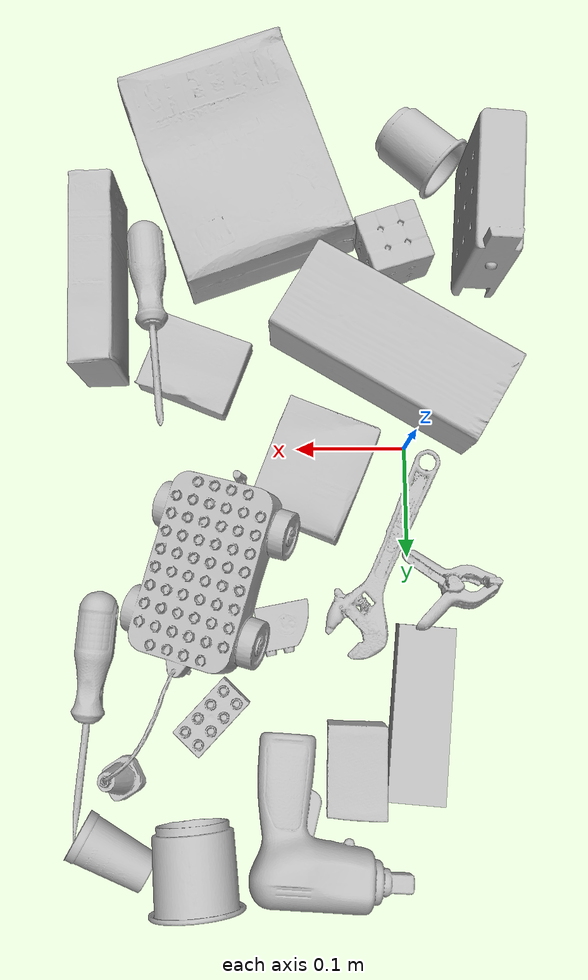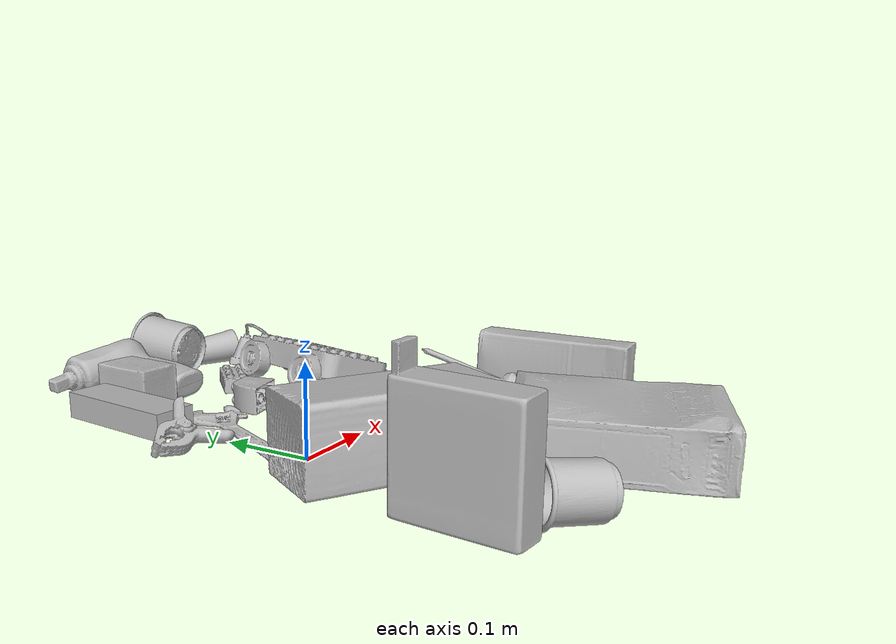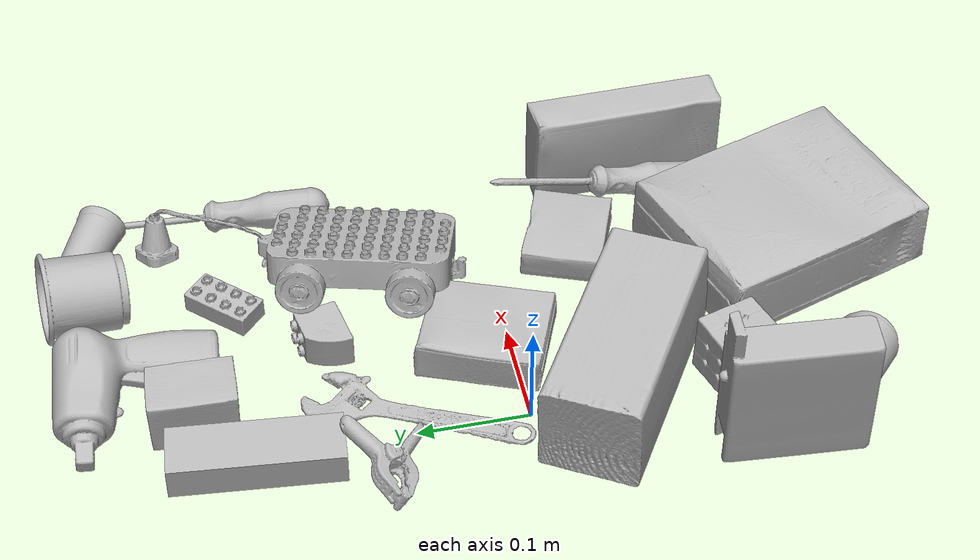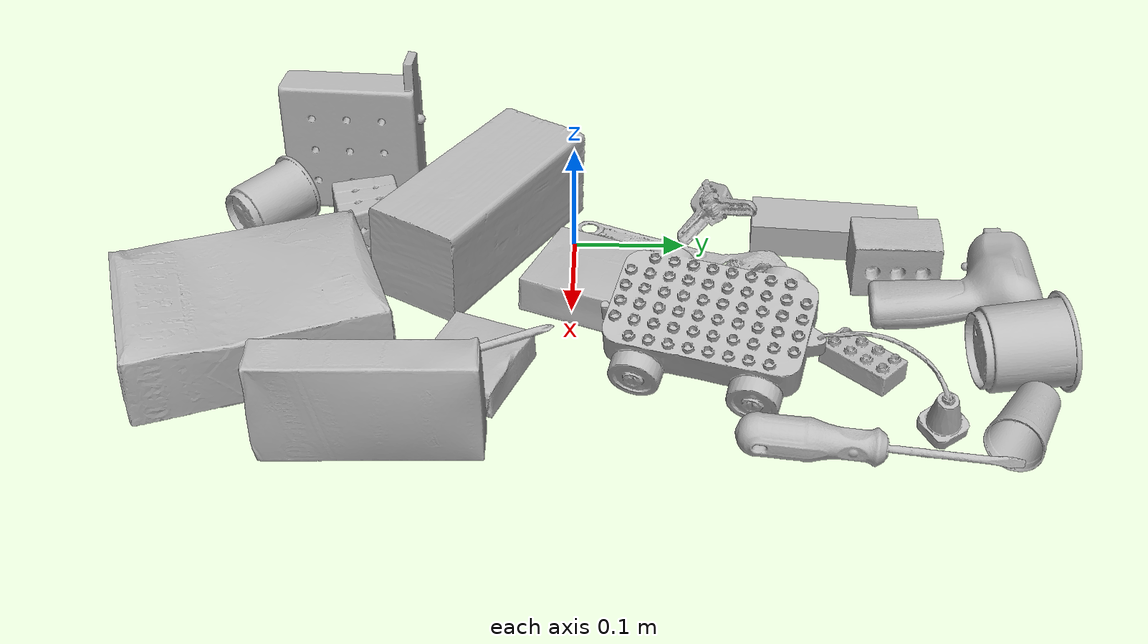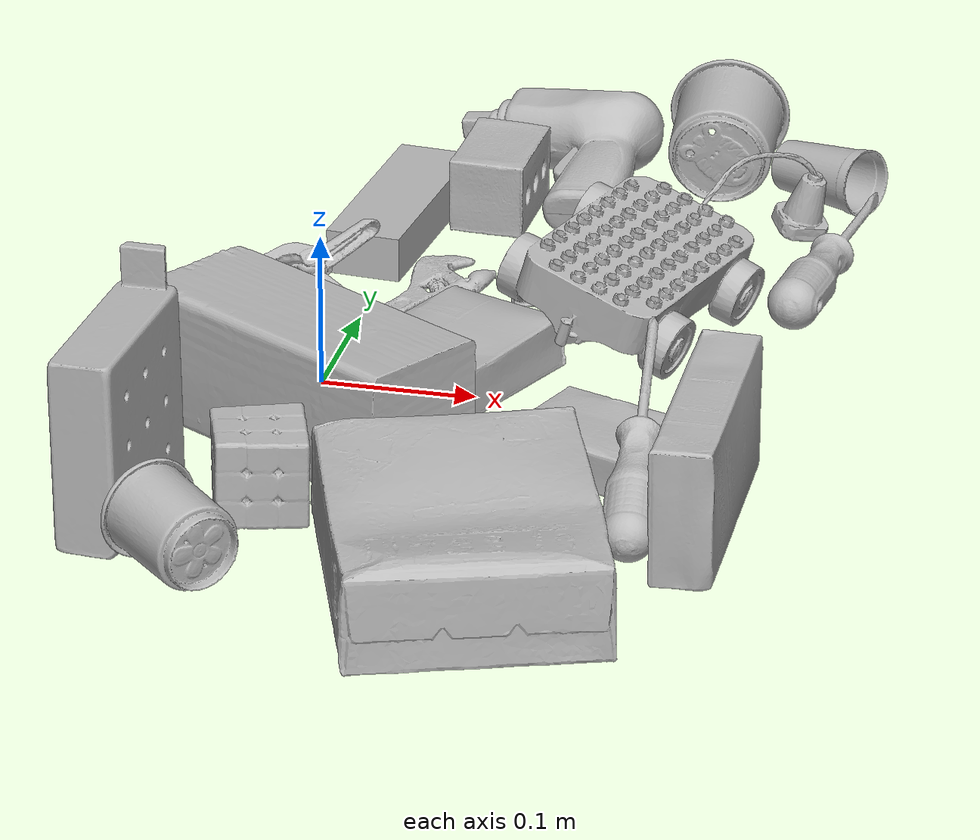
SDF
<sdf version="1.4">
  <world name="default">
    <light name="light1" type="point">
      <pose>0 0 1 0 0 0</pose>
      <diffuse>3 3 3 1</diffuse>
      <specular>3 3 3 1</specular>
    </light>
    <light name="light2" type="point">
      <pose>0 0.5 2 0 0 0</pose>
      <diffuse>1 1 1 1</diffuse>
      <specular>1 1 1 1</specular>
    </light>
    <light name="light3" type="point">
      <pose>0 0.5 2 0 0 0</pose>
      <diffuse>3 3 3 1</diffuse>
      <specular>3 3 3 1</specular>
    </light>
    <scene>
      <ambient>0.7 0.7 0.7</ambient>
    </scene>
    <model name="box21">
      <link name="link_box21">
        <collision name="default">
          <geometry>
            <mesh>
              <uri>model://cracker_box/collision_meshes/collision.obj</uri>
              <scale>1.0 1.0 1.0</scale>
            </mesh>
          </geometry>
          <surface>
            <friction>
              <ode>
                <mu>0.5</mu>
                <mu2>0.5</mu2>
              </ode>
            </friction>
          <contact>
        <ode>
            <max_vel>0</max_vel>
            <min_depth>0.0001</min_depth>
            <kp>1e8</kp>
        </ode>
    </contact></surface>
        </collision>
        <visual name="default">
          <geometry>
            <mesh>
              <uri>model://cracker_box/visual_meshes/visual.dae</uri>
              <scale>1.0 1.0 1.0</scale>
            </mesh>
          </geometry>
        </visual>
        <inertial>
          <mass>2.967785358428955</mass>
          <pose>0.0009464151808060706 0.00025434247800149024 -0.0017029535956680775 -0.0003162076618733006 -0.011106490531610344 0.00254679570085012</pose>
          <inertia>
            <ixx>0.0075487206</ixx>
            <iyy>0.012464421</iyy>
            <izz>0.017787872</izz>
            <ixy>0</ixy>
            <ixz>0</ixz>
            <iyz>0</iyz>
          </inertia>
        </inertial>
      </link>
      <pose>0.15262414515018463 -0.2635006606578827 0.036384113132953644 -0.014050196587312571 -0.005016093132231419 1.901661095368199</pose>
    </model>
    <model name="box22">
      <link name="link_box22">
        <collision name="default">
          <geometry>
            <mesh>
              <uri>model://rubiks_cube/collision_meshes/collision.obj</uri>
              <scale>1.0 1.0 1.0</scale>
            </mesh>
          </geometry>
          <surface>
            <friction>
              <ode>
                <mu>0.5</mu>
                <mu2>0.5</mu2>
              </ode>
            </friction>
          <contact>
        <ode>
            <max_vel>0</max_vel>
            <min_depth>0.0001</min_depth>
            <kp>1e8</kp>
        </ode>
    </contact></surface>
        </collision>
        <visual name="default">
          <geometry>
            <mesh>
              <uri>model://rubiks_cube/visual_meshes/visual.dae</uri>
              <scale>1.0 1.0 1.0</scale>
            </mesh>
          </geometry>
        </visual>
        <inertial>
          <mass>0.2631562352180481</mass>
          <pose>2.6721041649580002e-05 5.2569666877388954e-05 -7.264316082000732e-06 -0.05467275409565722 -0.09814109117242276 -0.03445701547045584</pose>
          <inertia>
            <ixx>0.0001454115</ixx>
            <iyy>0.00014473335</iyy>
            <izz>0.00014661645</izz>
            <ixy>0</ixy>
            <ixz>0</ixz>
            <iyz>0</iyz>
          </inertia>
        </inertial>
      </link>
      <pose>0.009076482616364956 -0.18510989844799042 0.029369641095399857 1.5697694984721744 -0.02523360722962036 1.8832282626661052</pose>
    </model>
    <model name="box23">
      <link name="link_box23">
        <collision name="default">
          <geometry>
            <mesh>
              <uri>model://pudding_box/collision_meshes/collision.obj</uri>
              <scale>1.0 1.0 1.0</scale>
            </mesh>
          </geometry>
          <surface>
            <friction>
              <ode>
                <mu>0.5</mu>
                <mu2>0.5</mu2>
              </ode>
            </friction>
          <contact>
        <ode>
            <max_vel>0</max_vel>
            <min_depth>0.0001</min_depth>
            <kp>1e8</kp>
        </ode>
    </contact></surface>
        </collision>
        <visual name="default">
          <geometry>
            <mesh>
              <uri>model://pudding_box/visual_meshes/visual.dae</uri>
              <scale>1.0 1.0 1.0</scale>
            </mesh>
          </geometry>
        </visual>
        <inertial>
          <mass>0.41353368759155273</mass>
          <pose>0.0004894821904599667 0.0008067885646596551 -0.0005188827635720372 0.005213101814074476 -0.006603797777454713 0.020079821436089117</pose>
          <inertia>
            <ixx>0.0004674785</ixx>
            <iyy>0.00031452288</iyy>
            <izz>0.0006903542</izz>
            <ixy>0</ixy>
            <ixz>0</ixz>
            <iyz>0</iyz>
          </inertia>
        </inertial>
      </link>
      <pose>0.08430448919534683 0.021485768258571625 0.018677761778235435 3.1386129104796403 -0.010562000935007781 2.7527668148022966</pose>
    </model>
    <model name="cup1">
      <link name="link_cup1">
        <collision name="default">
          <geometry>
            <mesh>
              <uri>model://cup_small/collision_meshes/collision.obj</uri>
              <scale>1.0 1.0 1.0</scale>
            </mesh>
          </geometry>
          <surface>
            <friction>
              <ode>
                <mu>0.5</mu>
                <mu2>0.5</mu2>
              </ode>
            </friction>
          <contact>
        <ode>
            <max_vel>0</max_vel>
            <min_depth>0.0001</min_depth>
            <kp>1e8</kp>
        </ode>
    </contact></surface>
        </collision>
        <visual name="default">
          <geometry>
            <mesh>
              <uri>model://cup_small/visual_meshes/visual.dae</uri>
              <scale>1.0 1.0 1.0</scale>
            </mesh>
          </geometry>
        </visual>
        <inertial>
          <mass>0.02095564641058445</mass>
          <pose>0.00010482477955520153 -0.0003377848770469427 -0.01074282731860876 -0.011492722259696445 -0.015280529703091471 -0.5058449819350237</pose>
          <inertia>
            <ixx>1.2338362e-05</ixx>
            <iyy>1.240201e-05</iyy>
            <izz>5.5708097e-06</izz>
            <ixy>0</ixy>
            <ixz>0</ixz>
            <iyz>0</iyz>
          </inertia>
        </inertial>
      </link>
      <pose>0.25920233130455017 0.35069113969802856 0.0196598581969738 -1.478496636421527 0.061634373577745455 -2.0732159587500982</pose>
    </model>
    <model name="cup2">
      <link name="link_cup2">
        <collision name="default">
          <geometry>
            <mesh>
              <uri>model://c_cups/collision_meshes/collision.obj</uri>
              <scale>1.0 1.0 1.0</scale>
            </mesh>
          </geometry>
          <surface>
            <friction>
              <ode>
                <mu>0.5</mu>
                <mu2>0.5</mu2>
              </ode>
            </friction>
          <contact>
        <ode>
            <max_vel>0</max_vel>
            <min_depth>0.0001</min_depth>
            <kp>1e8</kp>
        </ode>
    </contact></surface>
        </collision>
        <visual name="default">
          <geometry>
            <mesh>
              <uri>model://c_cups/visual_meshes/visual.dae</uri>
              <scale>1.0 1.0 1.0</scale>
            </mesh>
          </geometry>
        </visual>
        <inertial>
          <mass>0.04905003309249878</mass>
          <pose>0.0007237255922518671 0.0020153908990323544 -0.0012750986497849226 0.30215813246853196 0.013461388587527759 -0.08771773533446486</pose>
          <inertia>
            <ixx>3.6477843e-05</ixx>
            <iyy>3.583322e-05</iyy>
            <izz>3.225985e-05</izz>
            <ixy>0</ixy>
            <ixz>0</ixz>
            <iyz>0</iyz>
          </inertia>
        </inertial>
      </link>
      <pose>-0.018044525757431984 -0.28081658482551575 0.030013466253876686 -1.4920992559223183 0.3895192058348954 0.8525415578619876</pose>
    </model>
    <model name="box11">
      <link name="link_box11">
        <collision name="default">
          <geometry>
            <mesh>
              <uri>model://sugar_box/collision_meshes/collision.obj</uri>
              <scale>1.0 1.0 1.0</scale>
            </mesh>
          </geometry>
          <surface>
            <friction>
              <ode>
                <mu>0.5</mu>
                <mu2>0.5</mu2>
              </ode>
            </friction>
          <contact>
        <ode>
            <max_vel>0</max_vel>
            <min_depth>0.0001</min_depth>
            <kp>1e8</kp>
        </ode>
    </contact></surface>
        </collision>
        <visual name="default">
          <geometry>
            <mesh>
              <uri>model://sugar_box/visual_meshes/visual.dae</uri>
              <scale>1.0 1.0 1.0</scale>
            </mesh>
          </geometry>
        </visual>
        <inertial>
          <mass>0.9405714869499207</mass>
          <pose>0.0010343727190047503 3.849109634757042e-05 -0.0003636480832938105 -0.00040462618385709627 0.0010506635220579009 0.0026153790218148127</pose>
          <inertia>
            <ixx>0.0007836817</ixx>
            <iyy>0.0025330195</iyy>
            <izz>0.0030323272</izz>
            <ixy>0</ixy>
            <ixz>0</ixz>
            <iyz>0</iyz>
          </inertia>
        </inertial>
      </link>
      <pose>0.27691179513931274 -0.148788183927536 0.046450093388557434 1.5710202450001978 -4.0013832502801055e-05 1.5967623917731313</pose>
    </model>
    <model name="box12">
      <link name="link_box12">
        <collision name="default">
          <geometry>
            <mesh>
              <uri>model://jenga/collision_meshes/collision.obj</uri>
              <scale>1.0 1.0 1.0</scale>
            </mesh>
          </geometry>
          <surface>
            <friction>
              <ode>
                <mu>0.5</mu>
                <mu2>0.5</mu2>
              </ode>
            </friction>
          <contact>
        <ode>
            <max_vel>0</max_vel>
            <min_depth>0.0001</min_depth>
            <kp>1e8</kp>
        </ode>
    </contact></surface>
        </collision>
        <visual name="default">
          <geometry>
            <mesh>
              <uri>model://jenga/visual_meshes/visual.dae</uri>
              <scale>1.0 1.0 1.0</scale>
            </mesh>
          </geometry>
        </visual>
        <inertial>
          <mass>0.2285791039466858</mass>
          <pose>-2.502855807051674e-07 -0.00010250010382151231 -4.0923405322246253e-05 0.0 -7.342155186052628e-07 0.0</pose>
          <inertia>
            <ixx>6.3253385e-05</ixx>
            <iyy>0.00042860323</iyy>
            <izz>0.00045757034</izz>
            <ixy>0</ixy>
            <ixz>0</ixz>
            <iyz>0</iyz>
          </inertia>
        </inertial>
      </link>
      <pose>-0.006572518963366747 0.2366514652967453 0.014999995939433575 2.5657201873793786e-08 -1.4279393670899574e-08 -1.666127982163005</pose>
    </model>
    <model name="box13">
      <link name="link_box13">
        <collision name="default">
          <geometry>
            <mesh>
              <uri>model://wood_block/collision_meshes/collision.obj</uri>
              <scale>1.0 1.0 1.0</scale>
            </mesh>
          </geometry>
          <surface>
            <friction>
              <ode>
                <mu>0.5</mu>
                <mu2>0.5</mu2>
              </ode>
            </friction>
          <contact>
        <ode>
            <max_vel>0</max_vel>
            <min_depth>0.0001</min_depth>
            <kp>1e8</kp>
        </ode>
    </contact></surface>
        </collision>
        <visual name="default">
          <geometry>
            <mesh>
              <uri>model://wood_block/visual_meshes/visual.dae</uri>
              <scale>1.0 1.0 1.0</scale>
            </mesh>
          </geometry>
        </visual>
        <inertial>
          <mass>1.608048677444458</mass>
          <pose>-5.813315056002466e-06 -0.000570809468626976 0.0002640858292579651 -0.05220975529066727 -0.005192695547513155 -0.006861377927637377</pose>
          <inertia>
            <ixx>0.002151813</ixx>
            <iyy>0.006797577</iyy>
            <izz>0.0067721503</izz>
            <ixy>0</ixy>
            <ixz>0</ixz>
            <iyz>0</iyz>
          </inertia>
        </inertial>
      </link>
      <pose>0.0118799339979887 -0.08299436420202255 0.04427739232778549 -1.554883502355711 0.004819028502026494 2.5935071501637843</pose>
    </model>
    <model name="box14">
      <link name="link_box14">
        <collision name="default">
          <geometry>
            <mesh>
              <uri>model://gelatin_box/collision_meshes/collision.obj</uri>
              <scale>1.0 1.0 1.0</scale>
            </mesh>
          </geometry>
          <surface>
            <friction>
              <ode>
                <mu>0.5</mu>
                <mu2>0.5</mu2>
              </ode>
            </friction>
          <contact>
        <ode>
            <max_vel>0</max_vel>
            <min_depth>0.0001</min_depth>
            <kp>1e8</kp>
        </ode>
    </contact></surface>
        </collision>
        <visual name="default">
          <geometry>
            <mesh>
              <uri>model://gelatin_box/visual_meshes/visual.dae</uri>
              <scale>1.0 1.0 1.0</scale>
            </mesh>
          </geometry>
        </visual>
        <inertial>
          <mass>0.228233203291893</mass>
          <pose>0.0004319618456065655 0.00011156871914863586 -0.0003640321083366871 -0.0010503721031013481 -0.004755817754301117 0.016440566922732165</pose>
          <inertia>
            <ixx>0.000161114</ixx>
            <iyy>0.0001150829</iyy>
            <izz>0.0002452514</izz>
            <ixy>0</ixy>
            <ixz>0</ixz>
            <iyz>0</iyz>
          </inertia>
        </inertial>
      </link>
      <pose>0.19286741316318512 -0.07682934403419495 0.01516831573098898 0.005599740492801456 -0.007308207209870561 1.188929972864939</pose>
    </model>
    <model name="cup15">
      <link name="link_cup15">
        <collision name="default">
          <geometry>
            <mesh>
              <uri>model://f_cups/collision_meshes/collision.obj</uri>
              <scale>1.0 1.0 1.0</scale>
            </mesh>
          </geometry>
          <surface>
            <friction>
              <ode>
                <mu>0.5</mu>
                <mu2>0.5</mu2>
              </ode>
            </friction>
          <contact>
        <ode>
            <max_vel>0</max_vel>
            <min_depth>0.0001</min_depth>
            <kp>1e8</kp>
        </ode>
    </contact></surface>
        </collision>
        <visual name="default">
          <geometry>
            <mesh>
              <uri>model://f_cups/visual_meshes/visual.dae</uri>
              <scale>1.0 1.0 1.0</scale>
            </mesh>
          </geometry>
        </visual>
        <inertial>
          <mass>0.05267045274376869</mass>
          <pose>-0.003171468386426568 -0.0006240073125809431 -0.003655537962913513 0.7862325736201227 -0.2607934836260618 -0.18237270236977254</pose>
          <inertia>
            <ixx>4.9511644e-05</ixx>
            <iyy>5.193826e-05</iyy>
            <izz>5.4069198e-05</izz>
            <ixy>0</ixy>
            <ixz>0</ixz>
            <iyz>0</iyz>
          </inertia>
        </inertial>
      </link>
      <pose>0.18770015239715576 0.3591900169849396 0.03718641400337219 -0.5485822201777871 -1.4614277595737708 -0.942591534149248</pose>
    </model>
    <model name="toy1">
      <link name="link_toy1">
        <collision name="default">
          <geometry>
            <mesh>
              <uri>model://g_lego_duplo/collision_meshes/collision.obj</uri>
              <scale>1.0 1.0 1.0</scale>
            </mesh>
          </geometry>
          <surface>
            <friction>
              <ode>
                <mu>0.5</mu>
                <mu2>0.5</mu2>
              </ode>
            </friction>
          <contact>
        <ode>
            <max_vel>0</max_vel>
            <min_depth>0.0001</min_depth>
            <kp>1e8</kp>
        </ode>
    </contact></surface>
        </collision>
        <visual name="default">
          <geometry>
            <mesh>
              <uri>model://g_lego_duplo/visual_meshes/visual.dae</uri>
              <scale>1.0 1.0 1.0</scale>
            </mesh>
          </geometry>
        </visual>
        <inertial>
          <mass>0.5557854771614075</mass>
          <pose>-0.050047677010297775 0.0017554635414853692 0.0038806761149317026 0.01096300832625367 0.038108254431045284 -0.0965302354071939</pose>
          <inertia>
            <ixx>0.0008053398</ixx>
            <iyy>0.0024348022</iyy>
            <izz>0.003046027</izz>
            <ixy>0</ixy>
            <ixz>0</ixz>
            <iyz>0</iyz>
          </inertia>
        </inertial>
      </link>
      <pose>0.198149636387825 0.16989633440971375 0.044033508747816086 0.28723068797021095 0.015123493219601438 1.2833151984146327</pose>
    </model>
    <model name="toy2">
      <link name="link_toy2">
        <collision name="default">
          <geometry>
            <mesh>
              <uri>model://b_toy_airplane/collision_meshes/collision.obj</uri>
              <scale>1.0 1.0 1.0</scale>
            </mesh>
          </geometry>
          <surface>
            <friction>
              <ode>
                <mu>0.5</mu>
                <mu2>0.5</mu2>
              </ode>
            </friction>
          <contact>
        <ode>
            <max_vel>0</max_vel>
            <min_depth>0.0001</min_depth>
            <kp>1e8</kp>
        </ode>
    </contact></surface>
        </collision>
        <visual name="default">
          <geometry>
            <mesh>
              <uri>model://b_toy_airplane/visual_meshes/visual.dae</uri>
              <scale>1.0 1.0 1.0</scale>
            </mesh>
          </geometry>
        </visual>
        <inertial>
          <mass>0.5134223699569702</mass>
          <pose>0.00508136348798871 0.004015584941953421 0.009543065913021564 -0.0400181167848636 -0.04022184003740235 -0.5601502230799963</pose>
          <inertia>
            <ixx>0.00095317804</ixx>
            <iyy>0.00038099466</iyy>
            <izz>0.0011858484</izz>
            <ixy>0</ixy>
            <ixz>0</ixz>
            <iyz>0</iyz>
          </inertia>
        </inertial>
      </link>
      <pose>0.09693247079849243 0.3399219512939453 0.0356890931725502 3.0695709040887746 0.07405951541348363 3.0520373020509446</pose>
    </model>
    <model name="toy3">
      <link name="link_toy3">
        <collision name="default">
          <geometry>
            <mesh>
              <uri>model://foam_brick/collision_meshes/collision.obj</uri>
              <scale>1.0 1.0 1.0</scale>
            </mesh>
          </geometry>
          <surface>
            <friction>
              <ode>
                <mu>0.5</mu>
                <mu2>0.5</mu2>
              </ode>
            </friction>
          <contact>
        <ode>
            <max_vel>0</max_vel>
            <min_depth>0.0001</min_depth>
            <kp>1e8</kp>
        </ode>
    </contact></surface>
        </collision>
        <visual name="default">
          <geometry>
            <mesh>
              <uri>model://foam_brick/visual_meshes/visual.dae</uri>
              <scale>1.0 1.0 1.0</scale>
            </mesh>
          </geometry>
        </visual>
        <inertial>
          <mass>0.10737738013267517</mass>
          <pose>-0.0002522472059354186 0.00034584314562380314 -0.0002532101352699101 -0.29401713280371045 0.01727443708188723 -0.0007449863066790336</pose>
          <inertia>
            <ixx>4.6904443e-05</ixx>
            <iyy>7.488536e-05</iyy>
            <izz>7.583706e-05</izz>
            <ixy>0</ixy>
            <ixz>0</ixz>
            <iyz>0</iyz>
          </inertia>
        </inertial>
      </link>
      <pose>0.05106034874916077 0.28184974193573 0.025910692289471626 1.5828209129354494 -0.0003756189541378638 1.5454281570578774</pose>
    </model>
    <model name="toy4">
      <link name="link_toy4">
        <collision name="default">
          <geometry>
            <mesh>
              <uri>model://c_lego_duplo/collision_meshes/collision.obj</uri>
              <scale>1.0 1.0 1.0</scale>
            </mesh>
          </geometry>
          <surface>
            <friction>
              <ode>
                <mu>0.5</mu>
                <mu2>0.5</mu2>
              </ode>
            </friction>
          <contact>
        <ode>
            <max_vel>0</max_vel>
            <min_depth>0.0001</min_depth>
            <kp>1e8</kp>
        </ode>
    </contact></surface>
        </collision>
        <visual name="default">
          <geometry>
            <mesh>
              <uri>model://c_lego_duplo/visual_meshes/visual.dae</uri>
              <scale>1.0 1.0 1.0</scale>
            </mesh>
          </geometry>
        </visual>
        <inertial>
          <mass>0.0418582409620285</mass>
          <pose>0.00031645974377170205 0.00019464627257548273 0.0010453157592564821 -0.011520806412656213 0.005900100982121691 0.03110035028309464</pose>
          <inertia>
            <ixx>1.6107831e-05</ixx>
            <iyy>5.145423e-06</iyy>
            <izz>1.8823655e-05</izz>
            <ixy>0</ixy>
            <ixz>0</ixz>
            <iyz>0</iyz>
          </inertia>
        </inertial>
      </link>
      <pose>0.17638921737670898 0.2389284372329712 0.011981482617557049 0.00801931693802982 -0.002091619067170096 2.351545727302433</pose>
    </model>
    <model name="toy5">
      <link name="link_toy5">
        <collision name="default">
          <geometry>
            <mesh>
              <uri>model://nine_hole_peg_test/collision_meshes/collision.obj</uri>
              <scale>1.0 1.0 1.0</scale>
            </mesh>
          </geometry>
          <surface>
            <friction>
              <ode>
                <mu>0.5</mu>
                <mu2>0.5</mu2>
              </ode>
            </friction>
          <contact>
        <ode>
            <max_vel>0</max_vel>
            <min_depth>0.0001</min_depth>
            <kp>1e8</kp>
        </ode>
    </contact></surface>
        </collision>
        <visual name="default">
          <geometry>
            <mesh>
              <uri>model://nine_hole_peg_test/visual_meshes/visual.dae</uri>
              <scale>1.0 1.0 1.0</scale>
            </mesh>
          </geometry>
        </visual>
        <inertial>
          <mass>0.44585999846458435</mass>
          <pose>-0.004617387428879738 -0.009647615253925323 2.6460689696250483e-05 -0.001466677754783098 0.0007194209279192062 -0.6342398490080472</pose>
          <inertia>
            <ixx>0.0006971755</ixx>
            <iyy>0.0006509454</iyy>
            <izz>0.0012216569</izz>
            <ixy>0</ixy>
            <ixz>0</ixz>
            <iyz>0</iyz>
          </inertia>
        </inertial>
      </link>
      <pose>-0.07350941747426987 -0.2028649002313614 0.07401730120182037 1.558510194789841 -0.007628653895703974 1.4961189556630676</pose>
    </model>
    <model name="toy6">
      <link name="link_toy6">
        <collision name="default">
          <geometry>
            <mesh>
              <uri>model://d_lego_duplo/collision_meshes/collision.obj</uri>
              <scale>1.0 1.0 1.0</scale>
            </mesh>
          </geometry>
          <surface>
            <friction>
              <ode>
                <mu>0.5</mu>
                <mu2>0.5</mu2>
              </ode>
            </friction>
          <contact>
        <ode>
            <max_vel>0</max_vel>
            <min_depth>0.0001</min_depth>
            <kp>1e8</kp>
        </ode>
    </contact></surface>
        </collision>
        <visual name="default">
          <geometry>
            <mesh>
              <uri>model://d_lego_duplo/visual_meshes/visual.dae</uri>
              <scale>1.0 1.0 1.0</scale>
            </mesh>
          </geometry>
        </visual>
        <inertial>
          <mass>0.03287249803543091</mass>
          <pose>0.00283056334592402 0.0001636616507312283 0.000858980929479003 0.08010843587180921 -0.38355193616427774 0.0010296778305230027</pose>
          <inertia>
            <ixx>6.363631e-06</ixx>
            <iyy>9.031719e-06</iyy>
            <izz>8.709827e-06</izz>
            <ixy>0</ixy>
            <ixz>0</ixz>
            <iyz>0</iyz>
          </inertia>
        </inertial>
      </link>
      <pose>0.11131667345762253 0.1622692048549652 0.016380788758397102 -1.5707451073280865 -0.007999439418301866 0.18179503778102757</pose>
    </model>
    <model name="hardware1">
      <link name="link_hardware1">
        <collision name="default">
          <geometry>
            <mesh>
              <uri>model://phillips_screwdriver/collision_meshes/collision.obj</uri>
              <scale>1.0 1.0 1.0</scale>
            </mesh>
          </geometry>
          <surface>
            <friction>
              <ode>
                <mu>0.5</mu>
                <mu2>0.5</mu2>
              </ode>
            </friction>
          <contact>
        <ode>
            <max_vel>0</max_vel>
            <min_depth>0.0001</min_depth>
            <kp>1e8</kp>
        </ode>
    </contact></surface>
        </collision>
        <visual name="default">
          <geometry>
            <mesh>
              <uri>model://phillips_screwdriver/visual_meshes/visual.dae</uri>
              <scale>1.0 1.0 1.0</scale>
            </mesh>
          </geometry>
        </visual>
        <inertial>
          <mass>0.05929635465145111</mass>
          <pose>-0.04777182266116142 0.0010362300090491772 -0.00045555492397397757 -0.15720933335137202 0.005850991845378533 -0.002156742438797471</pose>
          <inertia>
            <ixx>6.9667135e-06</ixx>
            <iyy>8.735042e-05</iyy>
            <izz>8.742465e-05</izz>
            <ixy>0</ixy>
            <ixz>0</ixz>
            <iyz>0</iyz>
          </inertia>
        </inertial>
      </link>
      <pose>0.23029576241970062 -0.11610293388366699 0.0418759286403656 -0.1390968426321261 -0.2834159766378019 1.699722054241825</pose>
    </model>
    <model name="hardware2">
      <link name="link_hardware2">
        <collision name="default">
          <geometry>
            <mesh>
              <uri>model://flat_screwdriver/collision_meshes/collision.obj</uri>
              <scale>1.0 1.0 1.0</scale>
            </mesh>
          </geometry>
          <surface>
            <friction>
              <ode>
                <mu>0.5</mu>
                <mu2>0.5</mu2>
              </ode>
            </friction>
          <contact>
        <ode>
            <max_vel>0</max_vel>
            <min_depth>0.0001</min_depth>
            <kp>1e8</kp>
        </ode>
    </contact></surface>
        </collision>
        <visual name="default">
          <geometry>
            <mesh>
              <uri>model://flat_screwdriver/visual_meshes/visual.dae</uri>
              <scale>1.0 1.0 1.0</scale>
            </mesh>
          </geometry>
        </visual>
        <inertial>
          <mass>0.08023945242166519</mass>
          <pose>-0.0489187017083168 -0.0006576800369657576 -0.000614091579336673 -0.561358306335632 -0.0032337267228942767 0.006982275729110292</pose>
          <inertia>
            <ixx>9.4802335e-06</ixx>
            <iyy>0.00012035375</iyy>
            <izz>0.00012029803</izz>
            <ixy>0</ixy>
            <ixz>0</ixz>
            <iyz>0</iyz>
          </inertia>
        </inertial>
      </link>
      <pose>0.2850293219089508 0.2341398149728775 0.015415387228131294 1.3526475337513735 0.04683938211824973 1.4756002327292153</pose>
    </model>
    <model name="hardware3">
      <link name="link_hardware3">
        <collision name="default">
          <geometry>
            <mesh>
              <uri>model://medium_clamp/collision_meshes/collision.obj</uri>
              <scale>1.0 1.0 1.0</scale>
            </mesh>
          </geometry>
          <surface>
            <friction>
              <ode>
                <mu>0.5</mu>
                <mu2>0.5</mu2>
              </ode>
            </friction>
          <contact>
        <ode>
            <max_vel>0</max_vel>
            <min_depth>0.0001</min_depth>
            <kp>1e8</kp>
        </ode>
    </contact></surface>
        </collision>
        <visual name="default">
          <geometry>
            <mesh>
              <uri>model://medium_clamp/visual_meshes/visual.dae</uri>
              <scale>1.0 1.0 1.0</scale>
            </mesh>
          </geometry>
        </visual>
        <inertial>
          <mass>0.025976430624723434</mass>
          <pose>0.0053909942507743835 0.0003953239065594971 -0.0001222159480676055 -0.001226907020768324 0.0025845009771016812 0.038207788380880015</pose>
          <inertia>
            <ixx>7.0769133e-06</ixx>
            <iyy>1.02989125e-05</iyy>
            <izz>1.5863408e-05</izz>
            <ixy>0</ixy>
            <ixz>0</ixz>
            <iyz>0</iyz>
          </inertia>
        </inertial>
      </link>
      <pose>-0.0368804931640625 0.12898533046245575 0.01769396662712097 -0.4591940249439287 0.1399077396777319 -3.1055614403959946</pose>
    </model>
    <model name="hardware4">
      <link name="link_hardware4">
        <collision name="default">
          <geometry>
            <mesh>
              <uri>model://adjustable_wrench/collision_meshes/collision.obj</uri>
              <scale>1.0 1.0 1.0</scale>
            </mesh>
          </geometry>
          <surface>
            <friction>
              <ode>
                <mu>0.5</mu>
                <mu2>0.5</mu2>
              </ode>
            </friction>
          <contact>
        <ode>
            <max_vel>0</max_vel>
            <min_depth>0.0001</min_depth>
            <kp>1e8</kp>
        </ode>
    </contact></surface>
        </collision>
        <visual name="default">
          <geometry>
            <mesh>
              <uri>model://adjustable_wrench/visual_meshes/visual.dae</uri>
              <scale>1.0 1.0 1.0</scale>
            </mesh>
          </geometry>
        </visual>
        <inertial>
          <mass>0.023418840020895004</mass>
          <pose>0.03740980848670006 -0.00289688678458333 -0.0011149229248985648 -0.014473354604289867 0.006656022134877207 -0.010954199158636425</pose>
          <inertia>
            <ixx>4.793005e-06</ixx>
            <iyy>5.609652e-05</iyy>
            <izz>6.0634928e-05</izz>
            <ixy>0</ixy>
            <ixz>0</ixz>
            <iyz>0</iyz>
          </inertia>
        </inertial>
      </link>
      <pose>0.02017589658498764 0.09736019372940063 0.004628780763596296 3.098271483429047 -0.016038746087773687 1.155153755222904</pose>
    </model>
  <physics type="ode">
      <max_contacts>50</max_contacts>
      <ode>
        <solver>
          <type>quick</type>
          <iters>75</iters>
        </solver>
        <constraints>
          <contact_max_correcting_vel>0</contact_max_correcting_vel>
          <contact_surface_layer>0</contact_surface_layer>
        </constraints>
      </ode>
    </physics></world>
</sdf>
